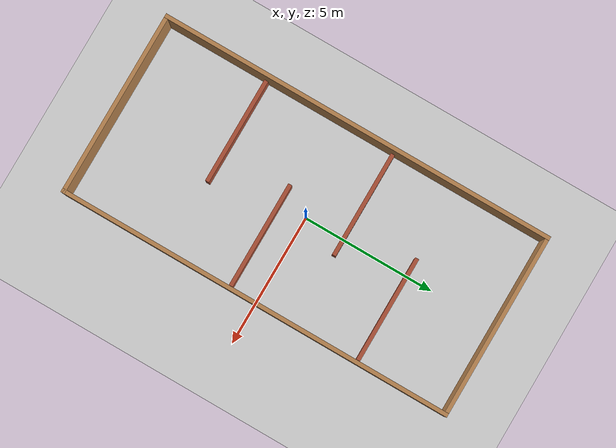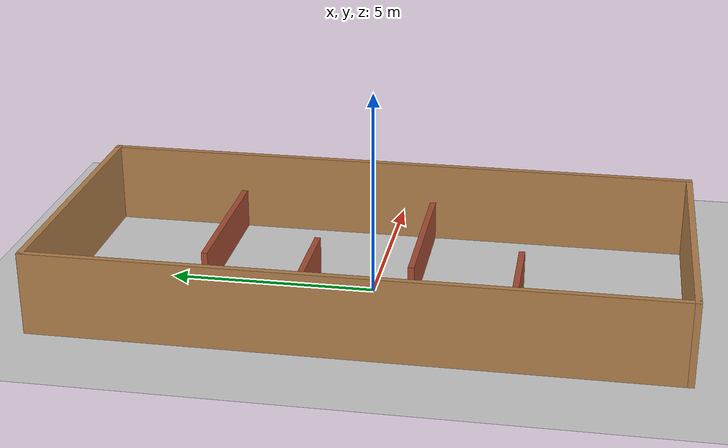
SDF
<sdf version="1.7">
 <world name="default">
  <light name="sun" type="directional">
   <pose>0 0 10 0 -0 0</pose>
   <diffuse>0.8 0.8 0.8 1</diffuse>
   <specular>0.1 0.1 0.1 1</specular>
   <attenuation>
    <range>1000</range>
    <constant>0.9</constant>
    <linear>0.01</linear>
    <quadratic>0.001</quadratic>
   </attenuation>
   <direction>-0.5 0.5 -1</direction>
   <spot><inner_angle>0</inner_angle><outer_angle>0</outer_angle><falloff>0</falloff></spot>
  </light>
  <model name="ground_plane">
   <static>1</static>
   <link name="link">
    <collision name="collision">
     <geometry><plane><normal>0 0 1</normal><size>100 100</size></plane></geometry>
     <surface><friction><ode><mu>100</mu><mu2>50</mu2></ode></friction></surface>
    </collision>
    <visual name="visual">
     <cast_shadows>0</cast_shadows>
     <geometry><plane><normal>0 0 1</normal><size>100 100</size></plane></geometry>
     <material>
      <script><uri>file://media/materials/scripts/gazebo.material</uri><name>Gazebo/Grey</name></script>
     </material>
    </visual>
   </link>
  </model>
  <gravity>0 0 -9.8</gravity>
  <magnetic_field>6e-06 2.3e-05 -4.2e-05</magnetic_field>
  <atmosphere type="adiabatic"/>
  <physics name="default_physics" default="0" type="ode">
   <max_step_size>0.001</max_step_size>
   <real_time_factor>1</real_time_factor>
   <real_time_update_rate>1000</real_time_update_rate>
  </physics>
  <scene><ambient>0.4 0.4 0.4 1</ambient><background>0.7 0.7 0.7 1</background><shadows>1</shadows></scene>
  <spherical_coordinates>
   <surface_model>EARTH_WGS84</surface_model>
   <latitude_deg>0</latitude_deg>
   <longitude_deg>0</longitude_deg>
   <elevation>0</elevation>
   <heading_deg>0</heading_deg>
  </spherical_coordinates>
  <include><name>box_s2</name><pose>0.000560 -0.000120 0 0 0 0</pose><uri>model://box_s2</uri></include>
 </world>
</sdf>

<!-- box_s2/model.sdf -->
<sdf version='1.7'>
  <model name='box_s2'>
    <link name='Wall_26'>
      <pose>-1.33 -3.5 0 0 -0 3.14159</pose>
      <self_collide>0</self_collide>
      <kinematic>0</kinematic>
      <gravity>1</gravity>
      <enable_wind>0</enable_wind>
      <inertial>
        <inertia>
          <ixx>0</ixx>
          <ixy>0</ixy>
          <ixz>0</ixz>
          <iyy>0</iyy>
          <iyz>0</iyz>
          <izz>0</izz>
        </inertia>
        <mass>0</mass>
        <pose>0 0 0 0 -0 0</pose>
      </inertial>
      <visual name='Wall_26_Visual'>
        <pose>0 0 0.5 0 -0 0</pose>
        <geometry>
          <box>
            <size>4 0.15 1</size>
          </box>
        </geometry>
        <material>
          <script>
            <uri>file://media/materials/scripts/gazebo.material</uri>
            <name>Gazebo/Bricks</name>
          </script>
          <ambient>1 1 1 1</ambient>
          <diffuse>1 1 1 1</diffuse>
          <specular>0.2 0.2 0.2 1</specular>
          <emissive>0 0 0 1</emissive>
          <shader type='pixel'>
            <normal_map>__default__</normal_map>
          </shader>
        </material>
        <meta>
          <layer>0</layer>
        </meta>
        <cast_shadows>1</cast_shadows>
        <transparency>0</transparency>
      </visual>
      <collision name='Wall_26_Collision'>
        <laser_retro>0</laser_retro>
        <max_contacts>10</max_contacts>
        <pose>0 0 0.5 0 -0 0</pose>
        <geometry>
          <box>
            <size>4 0.15 1</size>
          </box>
        </geometry>
        <surface>
          <friction>
            <ode>
              <mu>1</mu>
              <mu2>1</mu2>
              <fdir1>0 0 0</fdir1>
              <slip1>0</slip1>
              <slip2>0</slip2>
            </ode>
            <torsional>
              <coefficient>1</coefficient>
              <patch_radius>0</patch_radius>
              <surface_radius>0</surface_radius>
              <use_patch_radius>1</use_patch_radius>
              <ode>
                <slip>0</slip>
              </ode>
            </torsional>
          </friction>
          <bounce>
            <restitution_coefficient>0</restitution_coefficient>
            <threshold>1e+06</threshold>
          </bounce>
          <contact>
            <collide_without_contact>0</collide_without_contact>
            <collide_without_contact_bitmask>1</collide_without_contact_bitmask>
            <collide_bitmask>1</collide_bitmask>
            <ode>
              <soft_cfm>0</soft_cfm>
              <soft_erp>0.2</soft_erp>
              <kp>1e+13</kp>
              <kd>1</kd>
              <max_vel>0.01</max_vel>
              <min_depth>0</min_depth>
            </ode>
            <bullet>
              <split_impulse>1</split_impulse>
              <split_impulse_penetration_threshold>-0.01</split_impulse_penetration_threshold>
              <soft_cfm>0</soft_cfm>
              <soft_erp>0.2</soft_erp>
              <kp>1e+13</kp>
              <kd>1</kd>
            </bullet>
          </contact>
        </surface>
      </collision>
    </link>
    <link name='Wall_24'>
      <pose>-1.33 1.5 0 0 -0 3.14159</pose>
      <self_collide>0</self_collide>
      <kinematic>0</kinematic>
      <gravity>1</gravity>
      <enable_wind>0</enable_wind>
      <inertial>
        <inertia>
          <ixx>0</ixx>
          <ixy>0</ixy>
          <ixz>0</ixz>
          <iyy>0</iyy>
          <iyz>0</iyz>
          <izz>0</izz>
        </inertia>
        <mass>0</mass>
        <pose>0 0 0 0 -0 0</pose>
      </inertial>
      <visual name='Wall_24_Visual'>
        <pose>0 0 0.5 0 -0 0</pose>
        <geometry>
          <box>
            <size>4 0.15 1</size>
          </box>
        </geometry>
        <material>
          <script>
            <uri>file://media/materials/scripts/gazebo.material</uri>
            <name>Gazebo/Bricks</name>
          </script>
          <ambient>1 1 1 1</ambient>
          <diffuse>1 1 1 1</diffuse>
          <specular>0.2 0.2 0.2 1</specular>
          <emissive>0 0 0 1</emissive>
          <shader type='pixel'>
            <normal_map>__default__</normal_map>
          </shader>
        </material>
        <meta>
          <layer>0</layer>
        </meta>
        <cast_shadows>1</cast_shadows>
        <transparency>0</transparency>
      </visual>
      <collision name='Wall_24_Collision'>
        <laser_retro>0</laser_retro>
        <max_contacts>10</max_contacts>
        <pose>0 0 0.5 0 -0 0</pose>
        <geometry>
          <box>
            <size>4 0.15 1</size>
          </box>
        </geometry>
        <surface>
          <friction>
            <ode>
              <mu>1</mu>
              <mu2>1</mu2>
              <fdir1>0 0 0</fdir1>
              <slip1>0</slip1>
              <slip2>0</slip2>
            </ode>
            <torsional>
              <coefficient>1</coefficient>
              <patch_radius>0</patch_radius>
              <surface_radius>0</surface_radius>
              <use_patch_radius>1</use_patch_radius>
              <ode>
                <slip>0</slip>
              </ode>
            </torsional>
          </friction>
          <bounce>
            <restitution_coefficient>0</restitution_coefficient>
            <threshold>1e+06</threshold>
          </bounce>
          <contact>
            <collide_without_contact>0</collide_without_contact>
            <collide_without_contact_bitmask>1</collide_without_contact_bitmask>
            <collide_bitmask>1</collide_bitmask>
            <ode>
              <soft_cfm>0</soft_cfm>
              <soft_erp>0.2</soft_erp>
              <kp>1e+13</kp>
              <kd>1</kd>
              <max_vel>0.01</max_vel>
              <min_depth>0</min_depth>
            </ode>
            <bullet>
              <split_impulse>1</split_impulse>
              <split_impulse_penetration_threshold>-0.01</split_impulse_penetration_threshold>
              <soft_cfm>0</soft_cfm>
              <soft_erp>0.2</soft_erp>
              <kp>1e+13</kp>
              <kd>1</kd>
            </bullet>
          </contact>
        </surface>
      </collision>
    </link>
    <link name='Wall_25'>
      <pose>1.33 -1 0 0 -0 3.14159</pose>
      <self_collide>0</self_collide>
      <kinematic>0</kinematic>
      <gravity>1</gravity>
      <enable_wind>0</enable_wind>
      <inertial>
        <inertia>
          <ixx>0</ixx>
          <ixy>0</ixy>
          <ixz>0</ixz>
          <iyy>0</iyy>
          <iyz>0</iyz>
          <izz>0</izz>
        </inertia>
        <mass>0</mass>
        <pose>0 0 0 0 -0 0</pose>
      </inertial>
      <visual name='Wall_25_Visual'>
        <pose>0 0 0.5 0 -0 0</pose>
        <geometry>
          <box>
            <size>4 0.15 1</size>
          </box>
        </geometry>
        <material>
          <script>
            <uri>file://media/materials/scripts/gazebo.material</uri>
            <name>Gazebo/Bricks</name>
          </script>
          <ambient>1 1 1 1</ambient>
          <diffuse>1 1 1 1</diffuse>
          <specular>0.2 0.2 0.2 1</specular>
          <emissive>0 0 0 1</emissive>
          <shader type='pixel'>
            <normal_map>__default__</normal_map>
          </shader>
        </material>
        <meta>
          <layer>0</layer>
        </meta>
        <cast_shadows>1</cast_shadows>
        <transparency>0</transparency>
      </visual>
      <collision name='Wall_25_Collision'>
        <laser_retro>0</laser_retro>
        <max_contacts>10</max_contacts>
        <pose>0 0 0.5 0 -0 0</pose>
        <geometry>
          <box>
            <size>4 0.15 1</size>
          </box>
        </geometry>
        <surface>
          <friction>
            <ode>
              <mu>1</mu>
              <mu2>1</mu2>
              <fdir1>0 0 0</fdir1>
              <slip1>0</slip1>
              <slip2>0</slip2>
            </ode>
            <torsional>
              <coefficient>1</coefficient>
              <patch_radius>0</patch_radius>
              <surface_radius>0</surface_radius>
              <use_patch_radius>1</use_patch_radius>
              <ode>
                <slip>0</slip>
              </ode>
            </torsional>
          </friction>
          <bounce>
            <restitution_coefficient>0</restitution_coefficient>
            <threshold>1e+06</threshold>
          </bounce>
          <contact>
            <collide_without_contact>0</collide_without_contact>
            <collide_without_contact_bitmask>1</collide_without_contact_bitmask>
            <collide_bitmask>1</collide_bitmask>
            <ode>
              <soft_cfm>0</soft_cfm>
              <soft_erp>0.2</soft_erp>
              <kp>1e+13</kp>
              <kd>1</kd>
              <max_vel>0.01</max_vel>
              <min_depth>0</min_depth>
            </ode>
            <bullet>
              <split_impulse>1</split_impulse>
              <split_impulse_penetration_threshold>-0.01</split_impulse_penetration_threshold>
              <soft_cfm>0</soft_cfm>
              <soft_erp>0.2</soft_erp>
              <kp>1e+13</kp>
              <kd>1</kd>
            </bullet>
          </contact>
        </surface>
      </collision>
    </link>
    <link name='Wall_27'>
      <pose>1.33 4 0 0 -0 3.14159</pose>
      <self_collide>0</self_collide>
      <kinematic>0</kinematic>
      <gravity>1</gravity>
      <enable_wind>0</enable_wind>
      <inertial>
        <inertia>
          <ixx>0</ixx>
          <ixy>0</ixy>
          <ixz>0</ixz>
          <iyy>0</iyy>
          <iyz>0</iyz>
          <izz>0</izz>
        </inertia>
        <mass>0</mass>
        <pose>0 0 0 0 -0 0</pose>
      </inertial>
      <visual name='Wall_27_Visual'>
        <pose>0 0 0.5 0 -0 0</pose>
        <geometry>
          <box>
            <size>4 0.15 1</size>
          </box>
        </geometry>
        <material>
          <script>
            <uri>file://media/materials/scripts/gazebo.material</uri>
            <name>Gazebo/Bricks</name>
          </script>
          <ambient>1 1 1 1</ambient>
          <diffuse>1 1 1 1</diffuse>
          <specular>0.2 0.2 0.2 1</specular>
          <emissive>0 0 0 1</emissive>
          <shader type='pixel'>
            <normal_map>__default__</normal_map>
          </shader>
        </material>
        <meta>
          <layer>0</layer>
        </meta>
        <cast_shadows>1</cast_shadows>
        <transparency>0</transparency>
      </visual>
      <collision name='Wall_27_Collision'>
        <laser_retro>0</laser_retro>
        <max_contacts>10</max_contacts>
        <pose>0 0 0.5 0 -0 0</pose>
        <geometry>
          <box>
            <size>4 0.15 1</size>
          </box>
        </geometry>
        <surface>
          <friction>
            <ode>
              <mu>1</mu>
              <mu2>1</mu2>
              <fdir1>0 0 0</fdir1>
              <slip1>0</slip1>
              <slip2>0</slip2>
            </ode>
            <torsional>
              <coefficient>1</coefficient>
              <patch_radius>0</patch_radius>
              <surface_radius>0</surface_radius>
              <use_patch_radius>1</use_patch_radius>
              <ode>
                <slip>0</slip>
              </ode>
            </torsional>
          </friction>
          <bounce>
            <restitution_coefficient>0</restitution_coefficient>
            <threshold>1e+06</threshold>
          </bounce>
          <contact>
            <collide_without_contact>0</collide_without_contact>
            <collide_without_contact_bitmask>1</collide_without_contact_bitmask>
            <collide_bitmask>1</collide_bitmask>
            <ode>
              <soft_cfm>0</soft_cfm>
              <soft_erp>0.2</soft_erp>
              <kp>1e+13</kp>
              <kd>1</kd>
              <max_vel>0.01</max_vel>
              <min_depth>0</min_depth>
            </ode>
            <bullet>
              <split_impulse>1</split_impulse>
              <split_impulse_penetration_threshold>-0.01</split_impulse_penetration_threshold>
              <soft_cfm>0</soft_cfm>
              <soft_erp>0.2</soft_erp>
              <kp>1e+13</kp>
              <kd>1</kd>
            </bullet>
          </contact>
        </surface>
      </collision>
    </link>
    <link name='Wall_6'>
      <pose>0 7.425 0 0 -0 0</pose>
      <self_collide>0</self_collide>
      <kinematic>0</kinematic>
      <gravity>1</gravity>
      <enable_wind>0</enable_wind>
      <inertial>
        <mass>1</mass>
        <pose>0 0 0 0 -0 0</pose>
        <inertia>
          <ixx>1</ixx>
          <ixy>0</ixy>
          <ixz>0</ixz>
          <iyy>1</iyy>
          <iyz>0</iyz>
          <izz>1</izz>
        </inertia>
      </inertial>
      <visual name='Wall_6_Visual'>
        <pose>0 0 1 0 -0 0</pose>
        <geometry>
          <box>
            <size>7 0.15 2</size>
          </box>
        </geometry>
        <material>
          <script>
            <uri>file://media/materials/scripts/gazebo.material</uri>
            <name>Gazebo/Wood</name>
          </script>
          <ambient>1 1 1 1</ambient>
          <diffuse>1 1 1 1</diffuse>
          <specular>0.2 0.2 0.2 1</specular>
          <emissive>0 0 0 1</emissive>
          <shader type='pixel'>
            <normal_map>__default__</normal_map>
          </shader>
        </material>
        <meta>
          <layer>0</layer>
        </meta>
        <cast_shadows>1</cast_shadows>
        <transparency>0</transparency>
      </visual>
      <collision name='Wall_6_Collision'>
        <laser_retro>0</laser_retro>
        <max_contacts>10</max_contacts>
        <pose>0 0 1 0 -0 0</pose>
        <geometry>
          <box>
            <size>7 0.15 2</size>
          </box>
        </geometry>
        <surface>
          <friction>
            <ode>
              <mu>1</mu>
              <mu2>1</mu2>
              <fdir1>0 0 0</fdir1>
              <slip1>0</slip1>
              <slip2>0</slip2>
            </ode>
            <torsional>
              <coefficient>1</coefficient>
              <patch_radius>0</patch_radius>
              <surface_radius>0</surface_radius>
              <use_patch_radius>1</use_patch_radius>
              <ode>
                <slip>0</slip>
              </ode>
            </torsional>
          </friction>
          <bounce>
            <restitution_coefficient>0</restitution_coefficient>
            <threshold>1e+06</threshold>
          </bounce>
          <contact>
            <collide_without_contact>0</collide_without_contact>
            <collide_without_contact_bitmask>1</collide_without_contact_bitmask>
            <collide_bitmask>1</collide_bitmask>
            <ode>
              <soft_cfm>0</soft_cfm>
              <soft_erp>0.2</soft_erp>
              <kp>1e+13</kp>
              <kd>1</kd>
              <max_vel>0.01</max_vel>
              <min_depth>0</min_depth>
            </ode>
            <bullet>
              <split_impulse>1</split_impulse>
              <split_impulse_penetration_threshold>-0.01</split_impulse_penetration_threshold>
              <soft_cfm>0</soft_cfm>
              <soft_erp>0.2</soft_erp>
              <kp>1e+13</kp>
              <kd>1</kd>
            </bullet>
          </contact>
        </surface>
      </collision>
    </link>
    <link name='Wall_7'>
      <pose>3.425 0 0 0 0 -1.5708</pose>
      <self_collide>0</self_collide>
      <kinematic>0</kinematic>
      <gravity>1</gravity>
      <enable_wind>0</enable_wind>
      <inertial>
        <mass>1</mass>
        <pose>0 0 0 0 -0 0</pose>
        <inertia>
          <ixx>1</ixx>
          <ixy>0</ixy>
          <ixz>0</ixz>
          <iyy>1</iyy>
          <iyz>0</iyz>
          <izz>1</izz>
        </inertia>
      </inertial>
      <visual name='Wall_7_Visual'>
        <pose>0 0 1 0 -0 0</pose>
        <geometry>
          <box>
            <size>15 0.15 2</size>
          </box>
        </geometry>
        <material>
          <script>
            <uri>file://media/materials/scripts/gazebo.material</uri>
            <name>Gazebo/Wood</name>
          </script>
          <ambient>1 1 1 1</ambient>
          <diffuse>1 1 1 1</diffuse>
          <specular>0.2 0.2 0.2 1</specular>
          <emissive>0 0 0 1</emissive>
          <shader type='pixel'>
            <normal_map>__default__</normal_map>
          </shader>
        </material>
        <meta>
          <layer>0</layer>
        </meta>
        <cast_shadows>1</cast_shadows>
        <transparency>0</transparency>
      </visual>
      <collision name='Wall_7_Collision'>
        <laser_retro>0</laser_retro>
        <max_contacts>10</max_contacts>
        <pose>0 0 1 0 -0 0</pose>
        <geometry>
          <box>
            <size>15 0.15 2</size>
          </box>
        </geometry>
        <surface>
          <friction>
            <ode>
              <mu>1</mu>
              <mu2>1</mu2>
              <fdir1>0 0 0</fdir1>
              <slip1>0</slip1>
              <slip2>0</slip2>
            </ode>
            <torsional>
              <coefficient>1</coefficient>
              <patch_radius>0</patch_radius>
              <surface_radius>0</surface_radius>
              <use_patch_radius>1</use_patch_radius>
              <ode>
                <slip>0</slip>
              </ode>
            </torsional>
          </friction>
          <bounce>
            <restitution_coefficient>0</restitution_coefficient>
            <threshold>1e+06</threshold>
          </bounce>
          <contact>
            <collide_without_contact>0</collide_without_contact>
            <collide_without_contact_bitmask>1</collide_without_contact_bitmask>
            <collide_bitmask>1</collide_bitmask>
            <ode>
              <soft_cfm>0</soft_cfm>
              <soft_erp>0.2</soft_erp>
              <kp>1e+13</kp>
              <kd>1</kd>
              <max_vel>0.01</max_vel>
              <min_depth>0</min_depth>
            </ode>
            <bullet>
              <split_impulse>1</split_impulse>
              <split_impulse_penetration_threshold>-0.01</split_impulse_penetration_threshold>
              <soft_cfm>0</soft_cfm>
              <soft_erp>0.2</soft_erp>
              <kp>1e+13</kp>
              <kd>1</kd>
            </bullet>
          </contact>
        </surface>
      </collision>
    </link>
    <link name='Wall_8'>
      <pose>0 -7.425 0 0 -0 3.14159</pose>
      <self_collide>0</self_collide>
      <kinematic>0</kinematic>
      <gravity>1</gravity>
      <enable_wind>0</enable_wind>
      <inertial>
        <mass>1</mass>
        <pose>0 0 0 0 -0 0</pose>
        <inertia>
          <ixx>1</ixx>
          <ixy>0</ixy>
          <ixz>0</ixz>
          <iyy>1</iyy>
          <iyz>0</iyz>
          <izz>1</izz>
        </inertia>
      </inertial>
      <visual name='Wall_8_Visual'>
        <pose>0 0 1 0 -0 0</pose>
        <geometry>
          <box>
            <size>7 0.15 2</size>
          </box>
        </geometry>
        <material>
          <script>
            <uri>file://media/materials/scripts/gazebo.material</uri>
            <name>Gazebo/Wood</name>
          </script>
          <ambient>1 1 1 1</ambient>
          <diffuse>1 1 1 1</diffuse>
          <specular>0.2 0.2 0.2 1</specular>
          <emissive>0 0 0 1</emissive>
          <shader type='pixel'>
            <normal_map>__default__</normal_map>
          </shader>
        </material>
        <meta>
          <layer>0</layer>
        </meta>
        <cast_shadows>1</cast_shadows>
        <transparency>0</transparency>
      </visual>
      <collision name='Wall_8_Collision'>
        <laser_retro>0</laser_retro>
        <max_contacts>10</max_contacts>
        <pose>0 0 1 0 -0 0</pose>
        <geometry>
          <box>
            <size>7 0.15 2</size>
          </box>
        </geometry>
        <surface>
          <friction>
            <ode>
              <mu>1</mu>
              <mu2>1</mu2>
              <fdir1>0 0 0</fdir1>
              <slip1>0</slip1>
              <slip2>0</slip2>
            </ode>
            <torsional>
              <coefficient>1</coefficient>
              <patch_radius>0</patch_radius>
              <surface_radius>0</surface_radius>
              <use_patch_radius>1</use_patch_radius>
              <ode>
                <slip>0</slip>
              </ode>
            </torsional>
          </friction>
          <bounce>
            <restitution_coefficient>0</restitution_coefficient>
            <threshold>1e+06</threshold>
          </bounce>
          <contact>
            <collide_without_contact>0</collide_without_contact>
            <collide_without_contact_bitmask>1</collide_without_contact_bitmask>
            <collide_bitmask>1</collide_bitmask>
            <ode>
              <soft_cfm>0</soft_cfm>
              <soft_erp>0.2</soft_erp>
              <kp>1e+13</kp>
              <kd>1</kd>
              <max_vel>0.01</max_vel>
              <min_depth>0</min_depth>
            </ode>
            <bullet>
              <split_impulse>1</split_impulse>
              <split_impulse_penetration_threshold>-0.01</split_impulse_penetration_threshold>
              <soft_cfm>0</soft_cfm>
              <soft_erp>0.2</soft_erp>
              <kp>1e+13</kp>
              <kd>1</kd>
            </bullet>
          </contact>
        </surface>
      </collision>
    </link>
    <link name='Wall_9'>
      <pose>-3.425 0 0 0 -0 1.5708</pose>
      <self_collide>0</self_collide>
      <kinematic>0</kinematic>
      <gravity>1</gravity>
      <enable_wind>0</enable_wind>
      <inertial>
        <mass>1</mass>
        <pose>0 0 0 0 -0 0</pose>
        <inertia>
          <ixx>1</ixx>
          <ixy>0</ixy>
          <ixz>0</ixz>
          <iyy>1</iyy>
          <iyz>0</iyz>
          <izz>1</izz>
        </inertia>
      </inertial>
      <visual name='Wall_9_Visual'>
        <pose>0 0 1 0 -0 0</pose>
        <geometry>
          <box>
            <size>15 0.15 2</size>
          </box>
        </geometry>
        <material>
          <script>
            <uri>file://media/materials/scripts/gazebo.material</uri>
            <name>Gazebo/Wood</name>
          </script>
          <ambient>1 1 1 1</ambient>
          <diffuse>1 1 1 1</diffuse>
          <specular>0.2 0.2 0.2 1</specular>
          <emissive>0 0 0 1</emissive>
          <shader type='pixel'>
            <normal_map>__default__</normal_map>
          </shader>
        </material>
        <meta>
          <layer>0</layer>
        </meta>
        <cast_shadows>1</cast_shadows>
        <transparency>0</transparency>
      </visual>
      <collision name='Wall_9_Collision'>
        <laser_retro>0</laser_retro>
        <max_contacts>10</max_contacts>
        <pose>0 0 1 0 -0 0</pose>
        <geometry>
          <box>
            <size>15 0.15 2</size>
          </box>
        </geometry>
        <surface>
          <friction>
            <ode>
              <mu>1</mu>
              <mu2>1</mu2>
              <fdir1>0 0 0</fdir1>
              <slip1>0</slip1>
              <slip2>0</slip2>
            </ode>
            <torsional>
              <coefficient>1</coefficient>
              <patch_radius>0</patch_radius>
              <surface_radius>0</surface_radius>
              <use_patch_radius>1</use_patch_radius>
              <ode>
                <slip>0</slip>
              </ode>
            </torsional>
          </friction>
          <bounce>
            <restitution_coefficient>0</restitution_coefficient>
            <threshold>1e+06</threshold>
          </bounce>
          <contact>
            <collide_without_contact>0</collide_without_contact>
            <collide_without_contact_bitmask>1</collide_without_contact_bitmask>
            <collide_bitmask>1</collide_bitmask>
            <ode>
              <soft_cfm>0</soft_cfm>
              <soft_erp>0.2</soft_erp>
              <kp>1e+13</kp>
              <kd>1</kd>
              <max_vel>0.01</max_vel>
              <min_depth>0</min_depth>
            </ode>
            <bullet>
              <split_impulse>1</split_impulse>
              <split_impulse_penetration_threshold>-0.01</split_impulse_penetration_threshold>
              <soft_cfm>0</soft_cfm>
              <soft_erp>0.2</soft_erp>
              <kp>1e+13</kp>
              <kd>1</kd>
            </bullet>
          </contact>
        </surface>
      </collision>
    </link>
    <static>1</static>
    <allow_auto_disable>1</allow_auto_disable>
  </model>
</sdf>
